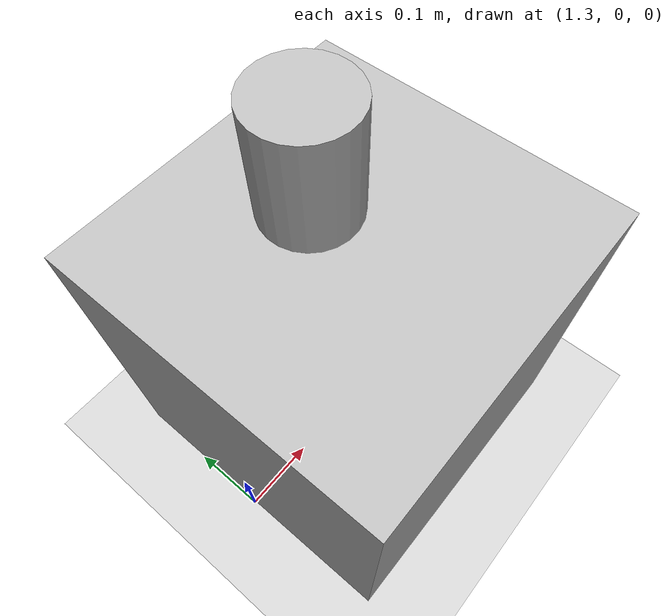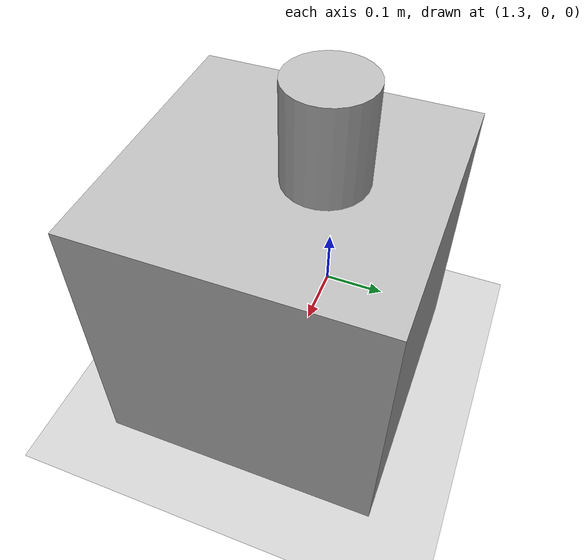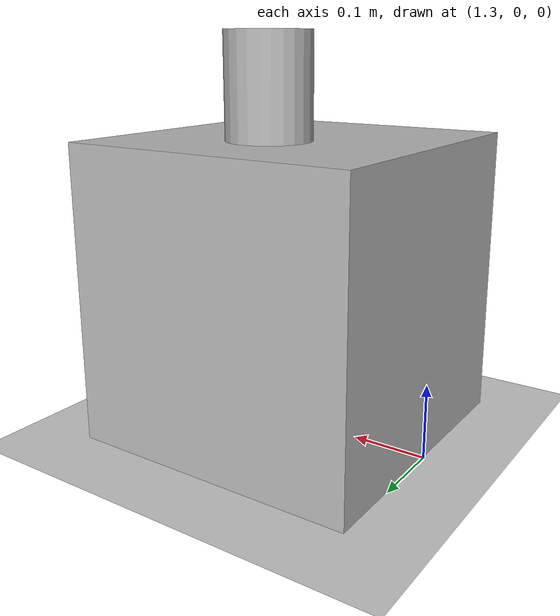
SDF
<sdf version="1.6">
 <world name="default">
  <light name="sun" type="directional">
   <pose>0 0 10 0 -0 0</pose>
   <diffuse>0.8 0.8 0.8 1</diffuse>
   <specular>0.1 0.1 0.1 1</specular>
   <attenuation>
    <range>1000</range>
    <constant>0.9</constant>
    <linear>0.01</linear>
    <quadratic>0.001</quadratic>
   </attenuation>
   <direction>-0.5 0.5 -1</direction>
  </light>
  <model name="ground_plane">
   <static>1</static>
   <link name="link">
    <collision name="collision">
     <geometry><plane><normal>0 0 1</normal><size>100 100</size></plane></geometry>
     <surface><friction><ode><mu>100</mu><mu2>50</mu2></ode></friction></surface>
    </collision>
    <visual name="visual">
     <cast_shadows>0</cast_shadows>
     <geometry><plane><normal>0 0 1</normal><size>100 100</size></plane></geometry>
     <material>
      <script><uri>file://media/materials/scripts/gazebo.material</uri><name>Gazebo/Grey</name></script>
     </material>
    </visual>
   </link>
  </model>
  <gravity>0 0 -9.8</gravity>
  <magnetic_field>6e-06 2.3e-05 -4.2e-05</magnetic_field>
  <atmosphere type="adiabatic"/>
  <physics name="default_physics" default="0" type="ode">
   <max_step_size>0.001</max_step_size>
   <real_time_factor>1</real_time_factor>
   <real_time_update_rate>1000</real_time_update_rate>
  </physics>
  <scene><ambient>0.4 0.4 0.4 1</ambient><background>0.7 0.7 0.7 1</background><shadows>1</shadows></scene>
  <spherical_coordinates>
   <surface_model>EARTH_WGS84</surface_model>
   <latitude_deg>0</latitude_deg>
   <longitude_deg>0</longitude_deg>
   <elevation>0</elevation>
   <heading_deg>0</heading_deg>
  </spherical_coordinates>
  <model name="cardboard_box">
   <pose>1.5 0 0.148999 0 -0 0</pose>
   <link name="link">
    <inertial>
     <mass>2</mass>
     <inertia>
      <ixx>0.0416667</ixx>
      <ixy>0</ixy>
      <ixz>0</ixz>
      <iyy>0.0566667</iyy>
      <iyz>0</iyz>
      <izz>0.0683333</izz>
     </inertia>
    </inertial>
    <collision name="collision">
     <geometry><box><size>0.5 0.4 0.3</size></box></geometry>
     <surface>
      <friction><ode><mu>1</mu><mu2>1</mu2></ode></friction>
      <contact><ode><kp>1e+07</kp><kd>1</kd><min_depth>0.001</min_depth><max_vel>0.1</max_vel></ode></contact>
     </surface>
    </collision>
    <visual name="visual">
     <pose>0 0 -0.15 0 -0 0</pose>
     <geometry>
      <mesh><uri>model://cardboard_box/meshes/cardboard_box.dae</uri><scale>1 1 1</scale></mesh>
     </geometry>
    </visual>
   </link>
  </model>
  <model name="beer">
   <link name="link">
    <pose>0 0 0.115 0 -0 0</pose>
    <inertial>
     <mass>0.1</mass>
     <inertia><ixx>0.00058</ixx><ixy>0</ixy><ixz>0</ixz><iyy>0.00058</iyy><iyz>0</iyz><izz>0.00019</izz></inertia>
    </inertial>
    <collision name="collision">
     <geometry><cylinder><radius>0.055</radius><length>0.23</length></cylinder></geometry>
    </collision>
    <visual name="visual">
     <geometry><cylinder><radius>0.055</radius><length>0.23</length></cylinder></geometry>
     <material>
      <script>
       <uri>model://beer/materials/scripts</uri>
       <uri>model://beer/materials/textures</uri>
       <name>Beer/Diffuse</name>
      </script>
     </material>
    </visual>
   </link>
   <pose>1.50296 0.049698 0.299 -2e-06 -0 0.410837</pose>
  </model>
 </world>
</sdf>
